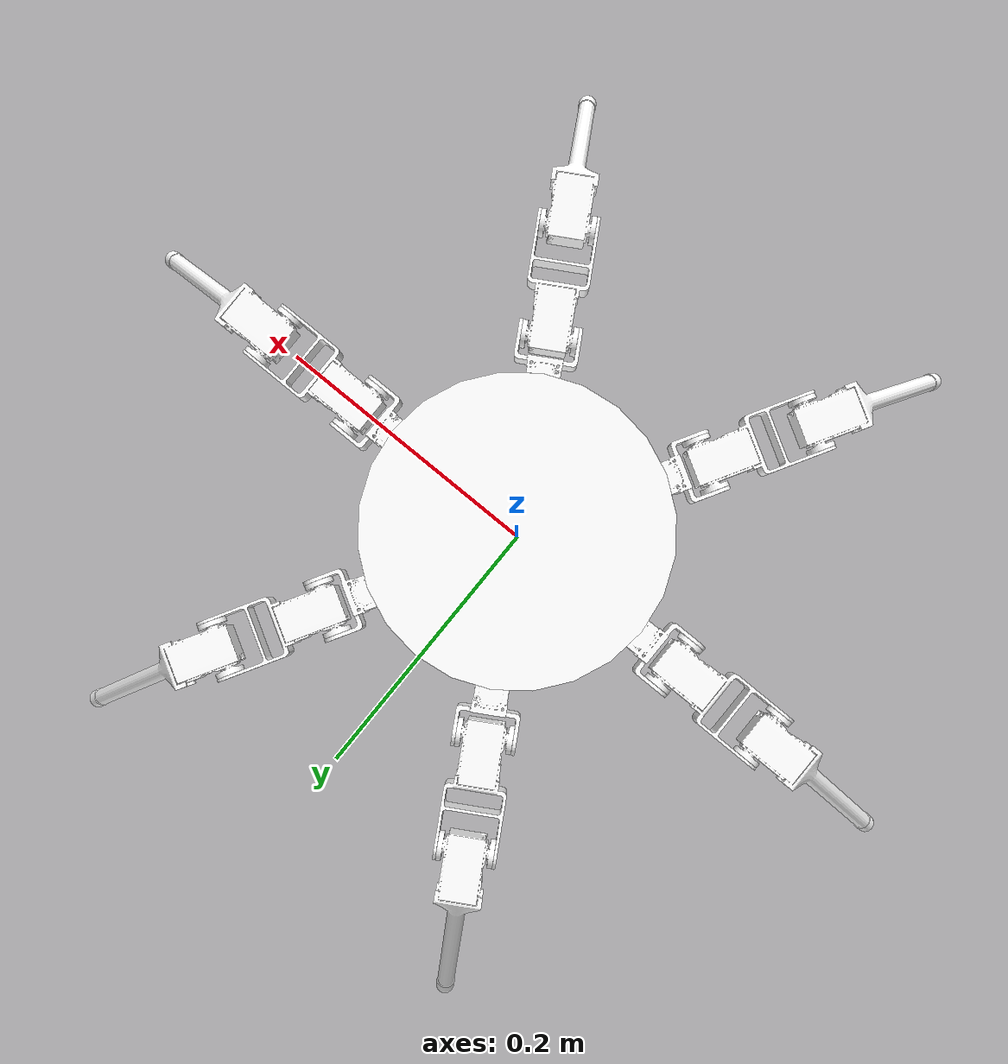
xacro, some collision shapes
<?xml version="1.0"?>
<robot xmlns:xacro="http://www.ros.org/wiki/xacro" name="hexapod_robot">
  <material name="white"><color rgba="1 1 1 1"/></material>
  <material name="foot_black"><color rgba="0.02 0.02 0.02 1"/></material>

  <!-- Package / mesh paths -->
  <xacro:property name="mesh_pkg" value="hexapod_robot"/>

  <!-- Actuator / joint limits -->
  <xacro:property name="servo_effort" value="1.2"/>
  <xacro:property name="servo_velocity" value="4.0"/>
  <xacro:property name="knee_lower" value="-2.094"/>
  <xacro:property name="knee_upper" value="2.094"/>
  <xacro:property name="ankle_lower" value="-1.745"/>
  <xacro:property name="ankle_upper" value="1.745"/>

  <!-- Joint geometry -->
  <xacro:property name="thigh_to_knee_x" value="0.05236"/>
  <xacro:property name="knee_to_ankle_x" value="0.07745"/>
  <xacro:property name="knee_to_ankle_z" value="0.00025"/>
  <xacro:property name="ankle_to_foot_x" value="0.11660"/>
  <xacro:property name="ankle_to_foot_y" value="-0.08015"/>
  <xacro:property name="ankle_to_foot_z" value="-0.00025"/>

  <!-- Collision geometry: matches latest URDF -->
  <xacro:property name="body_collision_radius" value="0.097"/>
  <xacro:property name="body_collision_height" value="0.121"/>
  <xacro:property name="foot_radius" value="0.0065"/>
  <xacro:property name="thigh_col_size" value="0.05236 0.025 0.025"/>
  <xacro:property name="knee_col_size" value="0.07745 0.022 0.022"/>
  <xacro:property name="ankle_col_size" value="0.130 0.022 0.022"/>

  <!-- Mass values -->
  <xacro:property name="body_mass" value="3"/>
  <xacro:property name="thigh_mass" value="0.071"/>
  <xacro:property name="knee_mass" value="0.079"/>
  <xacro:property name="ankle_mass" value="0.092"/>
  <xacro:property name="foot_mass" value="0.005"/>

  <xacro:macro name="inertial_full" params="mass com ixx ixy ixz iyy iyz izz">
    <inertial>
      <origin xyz="${com}" rpy="0 0 0"/>
      <mass value="${mass}"/>
      <inertia ixx="${ixx}" ixy="${ixy}" ixz="${ixz}" iyy="${iyy}" iyz="${iyz}" izz="${izz}"/>
    </inertial>
  </xacro:macro>

  <xacro:macro name="white_visual_mesh" params="mesh_file">
    <visual>
      <origin xyz="0 0 0" rpy="0 0 0"/>
      <geometry>
        <mesh filename="package://${mesh_pkg}/meshes/${mesh_file}"/>
      </geometry>
      <material name="white">
        <color rgba="1 1 1 1"/>
      </material>
    </visual>
  </xacro:macro>

  <!-- Base link: matches latest URDF -->
  <link name="base_link">
    <xacro:inertial_full
      mass="${body_mass}"
      com="0.00048381 0.0032191 0.050559"
      ixx="0.00045119" ixy="1.4679E-06" ixz="-1.2424E-07"
      iyy="0.00050737" iyz="-7.1838E-07" izz="0.00089983"/>
    <xacro:white_visual_mesh mesh_file="body_link.STL"/>
    <collision>
      <origin xyz="0 0 0.0605" rpy="0 0 0"/>
      <geometry>
        <cylinder radius="${body_collision_radius}" length="${body_collision_height}"/>
      </geometry>
    </collision>
  </link>

  <xacro:macro name="leg" params="prefix hip_x hip_y hip_z hip_yaw thigh_lower thigh_upper knee_axis ankle_axis">
    <link name="${prefix}_thigh_link">
      <xacro:inertial_full
        mass="${thigh_mass}"
        com="0.019013 0.00032996 0.00086404"
        ixx="2.5711E-06" ixy="1.9851E-08" ixz="-8.344E-08"
        iyy="2.9345E-06" iyz="-5.4072E-09" izz="4.3664E-06"/>
      <xacro:white_visual_mesh mesh_file="thigh_link.STL"/>
      <collision>
        <origin xyz="0.02618 0 0" rpy="0 0 0"/>
        <geometry>
          <box size="${thigh_col_size}"/>
        </geometry>
      </collision>
    </link>

    <joint name="${prefix}_thigh_joint" type="revolute">
      <origin xyz="${hip_x} ${hip_y} ${hip_z}" rpy="0 0 ${hip_yaw}"/>
      <parent link="base_link"/>
      <child link="${prefix}_thigh_link"/>
      <axis xyz="0 0 -1"/>
      <limit lower="${thigh_lower}" upper="${thigh_upper}" effort="${servo_effort}" velocity="${servo_velocity}"/>
      <dynamics damping="0.02" friction="0"/>
    </joint>

    <link name="${prefix}_knee_link">
      <xacro:inertial_full
        mass="${knee_mass}"
        com="0.024 0.00029496 0.00084694"
        ixx="3.459E-06" ixy="1.9852E-08" ixz="-8.344E-08"
        iyy="6.155E-06" iyz="-5.407E-09" izz="4.8098E-06"/>
      <xacro:white_visual_mesh mesh_file="knee_link.STL"/>
      <collision>
        <origin xyz="0.038725 0 0.000125" rpy="0 0 0"/>
        <geometry>
          <box size="${knee_col_size}"/>
        </geometry>
      </collision>
    </link>

    <joint name="${prefix}_knee_joint" type="revolute">
      <origin xyz="${thigh_to_knee_x} 0 0" rpy="1.5708 0 0"/>
      <parent link="${prefix}_thigh_link"/>
      <child link="${prefix}_knee_link"/>
      <axis xyz="${knee_axis}"/>
      <limit lower="${knee_lower}" upper="${knee_upper}" effort="${servo_effort}" velocity="${servo_velocity}"/>
      <dynamics damping="0.02" friction="0"/>
    </joint>

    <link name="${prefix}_ankle_link">
      <xacro:inertial_full
        mass="${ankle_mass}"
        com="0.037761 -0.014128 0.0005094"
        ixx="9.9998E-06" ixy="8.2893E-06" ixz="-8.344E-08"
        iyy="1.1276E-05" iyz="-5.407E-09" izz="1.9753E-05"/>
      <xacro:white_visual_mesh mesh_file="ankle_link.STL"/>
      <collision>
        <origin xyz="0.05830 -0.040075 -0.000125" rpy="0 0 -0.6024"/>
        <geometry>
          <box size="${ankle_col_size}"/>
        </geometry>
      </collision>
    </link>

    <joint name="${prefix}_ankle_joint" type="revolute">
      <origin xyz="${knee_to_ankle_x} 0 ${knee_to_ankle_z}" rpy="0 0 0"/>
      <parent link="${prefix}_knee_link"/>
      <child link="${prefix}_ankle_link"/>
      <axis xyz="${ankle_axis}"/>
      <limit lower="${ankle_lower}" upper="${ankle_upper}" effort="${servo_effort}" velocity="${servo_velocity}"/>
      <dynamics damping="0.02" friction="0"/>
    </joint>

    <link name="${prefix}_foot_link">
      <xacro:inertial_full
        mass="${foot_mass}"
        com="0 0 0"
        ixx="2.0E-07" ixy="0" ixz="0"
        iyy="2.0E-07" iyz="0" izz="2.0E-07"/>
      <visual>
        <origin xyz="0 0 0" rpy="0 0 0"/>
        <geometry>
          <sphere radius="${foot_radius}"/>
        </geometry>
        <material name="foot_black"/>
      </visual>
      <collision>
        <origin xyz="0 0 0" rpy="0 0 0"/>
        <geometry>
          <sphere radius="${foot_radius}"/>
        </geometry>
      </collision>
    </link>

    <joint name="${prefix}_foot_fixed" type="fixed">
      <origin xyz="${ankle_to_foot_x} ${ankle_to_foot_y} ${ankle_to_foot_z}" rpy="0 0 0"/>
      <parent link="${prefix}_ankle_link"/>
      <child link="${prefix}_foot_link"/>
    </joint>
  </xacro:macro>

  <xacro:leg prefix="lf" hip_x="-0.0425" hip_y="0.07361" hip_z="0.02525" hip_yaw="2.0944" thigh_lower="-1.571" thigh_upper="0.698" knee_axis="0 0 -1" ankle_axis="0 0 -1"/>
  <xacro:leg prefix="lm" hip_x="-0.085" hip_y="0" hip_z="0.02525" hip_yaw="-3.1416" thigh_lower="-0.698" thigh_upper="0.698" knee_axis="0 0 -1" ankle_axis="0 0 -1"/>
  <xacro:leg prefix="lb" hip_x="-0.0425" hip_y="-0.07361" hip_z="0.02525" hip_yaw="-2.0944" thigh_lower="-0.698" thigh_upper="1.571" knee_axis="0 0 -1" ankle_axis="0 0 -1"/>
  <xacro:leg prefix="rf" hip_x="0.0425" hip_y="0.07361" hip_z="0.02525" hip_yaw="1.0472" thigh_lower="-0.698" thigh_upper="1.571" knee_axis="0 0 1" ankle_axis="0 0 1"/>
  <xacro:leg prefix="rm" hip_x="0.085" hip_y="0" hip_z="0.02525" hip_yaw="0" thigh_lower="-0.698" thigh_upper="0.698" knee_axis="0 0 1" ankle_axis="0 0 1"/>
  <xacro:leg prefix="rb" hip_x="0.0425" hip_y="-0.07361" hip_z="0.02525" hip_yaw="-1.0472" thigh_lower="-1.571" thigh_upper="0.698" knee_axis="0 0 1" ankle_axis="0 0 1"/>
</robot>
